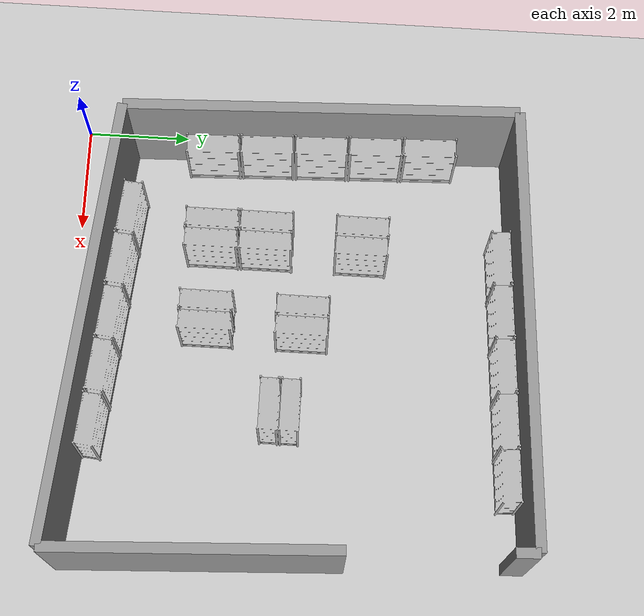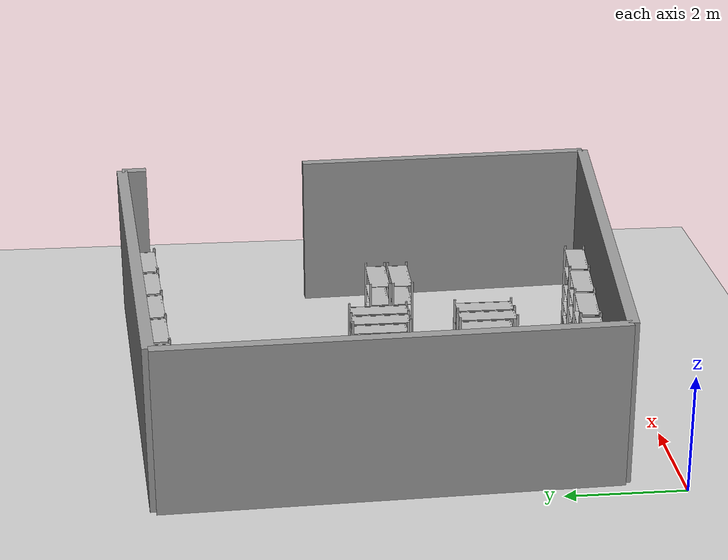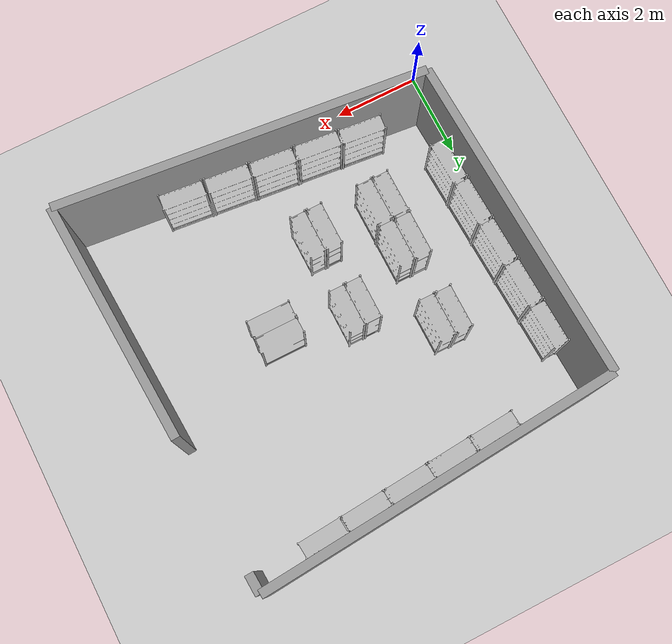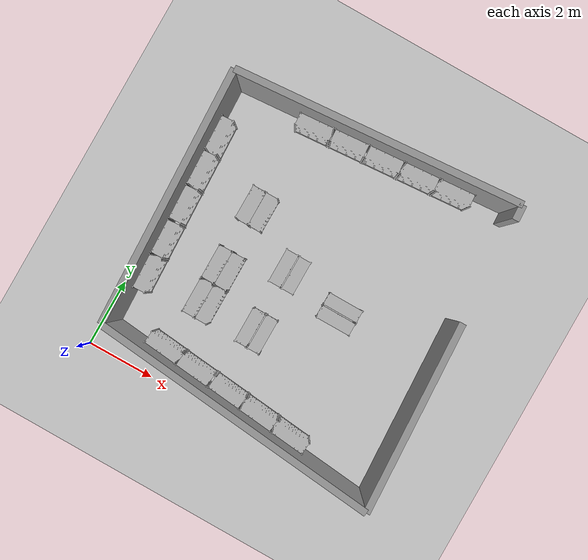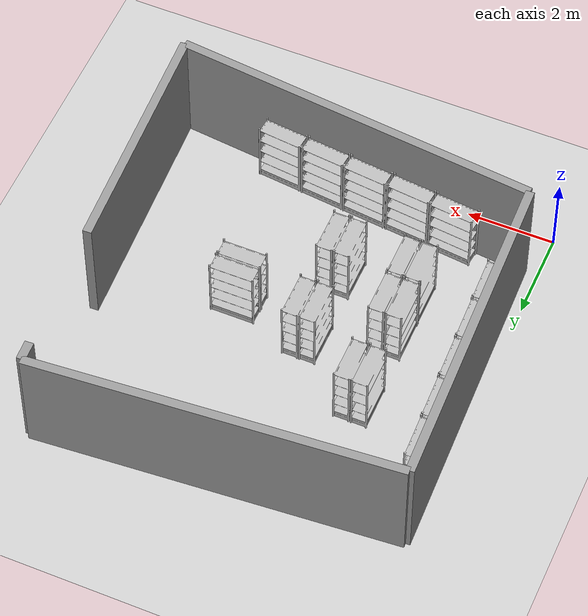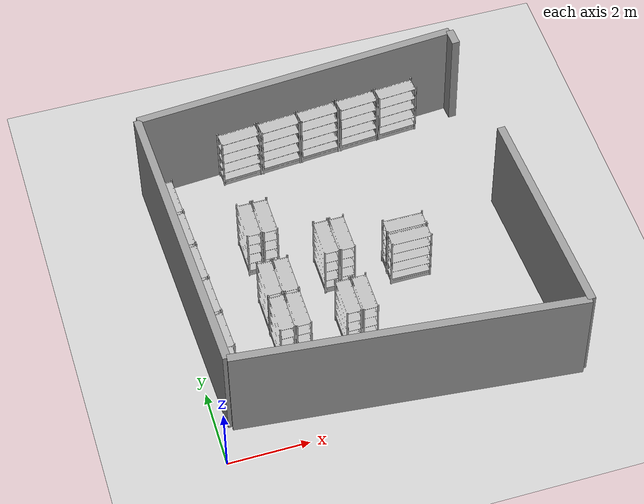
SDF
<sdf version="1.6">
  <world name="default">
    <light name="sun" type="directional">
      <cast_shadows>1</cast_shadows>
      <pose frame="">0 0 10 0 -0 0</pose>
      <diffuse>0.8 0.8 0.8 1</diffuse>
      <specular>0.2 0.2 0.2 1</specular>
      <attenuation>
        <range>1000</range>
        <constant>0.9</constant>
        <linear>0.01</linear>
        <quadratic>0.001</quadratic>
      </attenuation>
      <direction>-0.5 0.1 -0.9</direction>
    </light>
    <model name="ground_plane">
      <static>1</static>
      <link name="link">
        <collision name="collision">
          <geometry>
            <plane>
              <normal>0 0 1</normal>
              <size>100 100</size>
            </plane>
          </geometry>
          <surface>
            <contact>
              <collide_bitmask>65535</collide_bitmask>
              <ode />
            </contact>
            <friction>
              <ode>
                <mu>1000</mu>
                <mu2>1000</mu2>
              </ode>
              <torsional>
                <ode />
              </torsional>
            </friction>
            <bounce />
          </surface>
          <max_contacts>10</max_contacts>
        </collision>
        <visual name="visual">
          <cast_shadows>0</cast_shadows>
          <geometry>
            <plane>
              <normal>0 0 1</normal>
              <size>100 100</size>
            </plane>
          </geometry>
          <material>
            <script>
              <uri>file://media/materials/scripts/gazebo.material</uri>
              <name>Gazebo/Grey</name>
            </script>
          </material>
        </visual>
        <self_collide>0</self_collide>
        <enable_wind>0</enable_wind>
        <kinematic>0</kinematic>
      </link>
    </model>
    <gravity>0 0 -9.8</gravity>
    <magnetic_field>6e-06 2.3e-05 -4.2e-05</magnetic_field>
    <atmosphere type="adiabatic" />
    <physics name="default_physics" default="0" type="ode">
      <max_step_size>0.001</max_step_size>
      <real_time_factor>1</real_time_factor>
      <real_time_update_rate>1000</real_time_update_rate>
    </physics>
    <scene>
      <ambient>0.4 0.4 0.4 1</ambient>
      <background>0.7 0.7 0.7 1</background>
      <shadows>1</shadows>
    </scene>
    <audio>
      <device>default</device>
    </audio>
    <wind />
    <spherical_coordinates>
      <surface_model>EARTH_WGS84</surface_model>
      <latitude_deg>0</latitude_deg>
      <longitude_deg>0</longitude_deg>
      <elevation>0</elevation>
      <heading_deg>0</heading_deg>
    </spherical_coordinates>
    <gui fullscreen="0">
      <camera name="user_camera">
        <pose frame="">5.5458 -17.3868 19.7357 0 0.841797 1.67218</pose>
        <view_controller>orbit</view_controller>
        <projection_type>perspective</projection_type>
      </camera>
    </gui>
    <plugin name="ActorPosesPlugin" filename="libActorPosesPlugin.so" />
    <model name="store_shelf_moduled_0">
      <link name="link">
        <collision name="collision">
          <geometry>
            <mesh>
              <uri>model://store_shelf_moduled/meshes/store_shelf_moduled.dae</uri>
            </mesh>
          </geometry>
        </collision>
        <visual name="visual">
          <geometry>
            <mesh>
              <uri>model://store_shelf_moduled/meshes/store_shelf_moduled.dae</uri>
            </mesh>
          </geometry>
        </visual>
        <inertial>
          <mass>1000</mass>
          <inertia>
            <ixx>840083</ixx>
            <ixy>0</ixy>
            <ixz>0</ixz>
            <iyy>475500</iyy>
            <iyz>0</iyz>
            <izz>1.30208e+06</izz>
          </inertia>
        </inertial>
        <self_collide>0</self_collide>
        <enable_wind>0</enable_wind>
        <kinematic>0</kinematic>
      </link>
      <static>1</static>
      <pose frame="">1.430044 0.9394943 0 0 0 -0.1006093</pose>
    </model>
    <model name="store_shelf_moduled_1">
      <link name="link">
        <collision name="collision">
          <geometry>
            <mesh>
              <uri>model://store_shelf_moduled/meshes/store_shelf_moduled.dae</uri>
            </mesh>
          </geometry>
        </collision>
        <visual name="visual">
          <geometry>
            <mesh>
              <uri>model://store_shelf_moduled/meshes/store_shelf_moduled.dae</uri>
            </mesh>
          </geometry>
        </visual>
        <inertial>
          <mass>1000</mass>
          <inertia>
            <ixx>840083</ixx>
            <ixy>0</ixy>
            <ixz>0</ixz>
            <iyy>475500</iyy>
            <iyz>0</iyz>
            <izz>1.30208e+06</izz>
          </inertia>
        </inertial>
        <self_collide>0</self_collide>
        <enable_wind>0</enable_wind>
        <kinematic>0</kinematic>
      </link>
      <static>1</static>
      <pose frame="">2.480044 0.8294943 0 0 0 -0.1006093</pose>
    </model>
    <model name="store_shelf_moduled_2">
      <link name="link">
        <collision name="collision">
          <geometry>
            <mesh>
              <uri>model://store_shelf_moduled/meshes/store_shelf_moduled.dae</uri>
            </mesh>
          </geometry>
        </collision>
        <visual name="visual">
          <geometry>
            <mesh>
              <uri>model://store_shelf_moduled/meshes/store_shelf_moduled.dae</uri>
            </mesh>
          </geometry>
        </visual>
        <inertial>
          <mass>1000</mass>
          <inertia>
            <ixx>840083</ixx>
            <ixy>0</ixy>
            <ixz>0</ixz>
            <iyy>475500</iyy>
            <iyz>0</iyz>
            <izz>1.30208e+06</izz>
          </inertia>
        </inertial>
        <self_collide>0</self_collide>
        <enable_wind>0</enable_wind>
        <kinematic>0</kinematic>
      </link>
      <static>1</static>
      <pose frame="">3.540044 0.7294943 0 0 0 -0.1006093</pose>
    </model>
    <model name="store_shelf_moduled_3">
      <link name="link">
        <collision name="collision">
          <geometry>
            <mesh>
              <uri>model://store_shelf_moduled/meshes/store_shelf_moduled.dae</uri>
            </mesh>
          </geometry>
        </collision>
        <visual name="visual">
          <geometry>
            <mesh>
              <uri>model://store_shelf_moduled/meshes/store_shelf_moduled.dae</uri>
            </mesh>
          </geometry>
        </visual>
        <inertial>
          <mass>1000</mass>
          <inertia>
            <ixx>840083</ixx>
            <ixy>0</ixy>
            <ixz>0</ixz>
            <iyy>475500</iyy>
            <iyz>0</iyz>
            <izz>1.30208e+06</izz>
          </inertia>
        </inertial>
        <self_collide>0</self_collide>
        <enable_wind>0</enable_wind>
        <kinematic>0</kinematic>
      </link>
      <static>1</static>
      <pose frame="">4.590044 0.6194943 0 0 0 -0.1006093</pose>
    </model>
    <model name="store_shelf_moduled_4">
      <link name="link">
        <collision name="collision">
          <geometry>
            <mesh>
              <uri>model://store_shelf_moduled/meshes/store_shelf_moduled.dae</uri>
            </mesh>
          </geometry>
        </collision>
        <visual name="visual">
          <geometry>
            <mesh>
              <uri>model://store_shelf_moduled/meshes/store_shelf_moduled.dae</uri>
            </mesh>
          </geometry>
        </visual>
        <inertial>
          <mass>1000</mass>
          <inertia>
            <ixx>840083</ixx>
            <ixy>0</ixy>
            <ixz>0</ixz>
            <iyy>475500</iyy>
            <iyz>0</iyz>
            <izz>1.30208e+06</izz>
          </inertia>
        </inertial>
        <self_collide>0</self_collide>
        <enable_wind>0</enable_wind>
        <kinematic>0</kinematic>
      </link>
      <static>1</static>
      <pose frame="">5.650044 0.5094943 0 0 0 -0.1006093</pose>
    </model>
    <model name="store_shelf_moduled_5">
      <link name="link">
        <collision name="collision">
          <geometry>
            <mesh>
              <uri>model://store_shelf_moduled/meshes/store_shelf_moduled.dae</uri>
            </mesh>
          </geometry>
        </collision>
        <visual name="visual">
          <geometry>
            <mesh>
              <uri>model://store_shelf_moduled/meshes/store_shelf_moduled.dae</uri>
            </mesh>
          </geometry>
        </visual>
        <inertial>
          <mass>1000</mass>
          <inertia>
            <ixx>840083</ixx>
            <ixy>0</ixy>
            <ixz>0</ixz>
            <iyy>475500</iyy>
            <iyz>0</iyz>
            <izz>1.30208e+06</izz>
          </inertia>
        </inertial>
        <self_collide>0</self_collide>
        <enable_wind>0</enable_wind>
        <kinematic>0</kinematic>
      </link>
      <static>1</static>
      <pose frame="">7.317716 8.880298 0 0 0 -3.064358</pose>
    </model>
    <model name="store_shelf_moduled_6">
      <link name="link">
        <collision name="collision">
          <geometry>
            <mesh>
              <uri>model://store_shelf_moduled/meshes/store_shelf_moduled.dae</uri>
            </mesh>
          </geometry>
        </collision>
        <visual name="visual">
          <geometry>
            <mesh>
              <uri>model://store_shelf_moduled/meshes/store_shelf_moduled.dae</uri>
            </mesh>
          </geometry>
        </visual>
        <inertial>
          <mass>1000</mass>
          <inertia>
            <ixx>840083</ixx>
            <ixy>0</ixy>
            <ixz>0</ixz>
            <iyy>475500</iyy>
            <iyz>0</iyz>
            <izz>1.30208e+06</izz>
          </inertia>
        </inertial>
        <self_collide>0</self_collide>
        <enable_wind>0</enable_wind>
        <kinematic>0</kinematic>
      </link>
      <static>1</static>
      <pose frame="">6.257715 8.800298 0 0 0 -3.064358</pose>
    </model>
    <model name="store_shelf_moduled_7">
      <link name="link">
        <collision name="collision">
          <geometry>
            <mesh>
              <uri>model://store_shelf_moduled/meshes/store_shelf_moduled.dae</uri>
            </mesh>
          </geometry>
        </collision>
        <visual name="visual">
          <geometry>
            <mesh>
              <uri>model://store_shelf_moduled/meshes/store_shelf_moduled.dae</uri>
            </mesh>
          </geometry>
        </visual>
        <inertial>
          <mass>1000</mass>
          <inertia>
            <ixx>840083</ixx>
            <ixy>0</ixy>
            <ixz>0</ixz>
            <iyy>475500</iyy>
            <iyz>0</iyz>
            <izz>1.30208e+06</izz>
          </inertia>
        </inertial>
        <self_collide>0</self_collide>
        <enable_wind>0</enable_wind>
        <kinematic>0</kinematic>
      </link>
      <static>1</static>
      <pose frame="">5.197715 8.720298 0 0 0 -3.064358</pose>
    </model>
    <model name="store_shelf_moduled_8">
      <link name="link">
        <collision name="collision">
          <geometry>
            <mesh>
              <uri>model://store_shelf_moduled/meshes/store_shelf_moduled.dae</uri>
            </mesh>
          </geometry>
        </collision>
        <visual name="visual">
          <geometry>
            <mesh>
              <uri>model://store_shelf_moduled/meshes/store_shelf_moduled.dae</uri>
            </mesh>
          </geometry>
        </visual>
        <inertial>
          <mass>1000</mass>
          <inertia>
            <ixx>840083</ixx>
            <ixy>0</ixy>
            <ixz>0</ixz>
            <iyy>475500</iyy>
            <iyz>0</iyz>
            <izz>1.30208e+06</izz>
          </inertia>
        </inertial>
        <self_collide>0</self_collide>
        <enable_wind>0</enable_wind>
        <kinematic>0</kinematic>
      </link>
      <static>1</static>
      <pose frame="">4.147716 8.640298 0 0 0 -3.064358</pose>
    </model>
    <model name="store_shelf_moduled_9">
      <link name="link">
        <collision name="collision">
          <geometry>
            <mesh>
              <uri>model://store_shelf_moduled/meshes/store_shelf_moduled.dae</uri>
            </mesh>
          </geometry>
        </collision>
        <visual name="visual">
          <geometry>
            <mesh>
              <uri>model://store_shelf_moduled/meshes/store_shelf_moduled.dae</uri>
            </mesh>
          </geometry>
        </visual>
        <inertial>
          <mass>1000</mass>
          <inertia>
            <ixx>840083</ixx>
            <ixy>0</ixy>
            <ixz>0</ixz>
            <iyy>475500</iyy>
            <iyz>0</iyz>
            <izz>1.30208e+06</izz>
          </inertia>
        </inertial>
        <self_collide>0</self_collide>
        <enable_wind>0</enable_wind>
        <kinematic>0</kinematic>
      </link>
      <static>1</static>
      <pose frame="">3.087716 8.560298 0 0 0 -3.064358</pose>
    </model>
    <model name="store_shelf_moduled_10">
      <link name="link">
        <collision name="collision">
          <geometry>
            <mesh>
              <uri>model://store_shelf_moduled/meshes/store_shelf_moduled.dae</uri>
            </mesh>
          </geometry>
        </collision>
        <visual name="visual">
          <geometry>
            <mesh>
              <uri>model://store_shelf_moduled/meshes/store_shelf_moduled.dae</uri>
            </mesh>
          </geometry>
        </visual>
        <inertial>
          <mass>1000</mass>
          <inertia>
            <ixx>840083</ixx>
            <ixy>0</ixy>
            <ixz>0</ixz>
            <iyy>475500</iyy>
            <iyz>0</iyz>
            <izz>1.30208e+06</izz>
          </inertia>
        </inertial>
        <self_collide>0</self_collide>
        <enable_wind>0</enable_wind>
        <kinematic>0</kinematic>
      </link>
      <static>1</static>
      <pose frame="">0.2299349 7.373607 0 0 0 -1.534716</pose>
    </model>
    <model name="store_shelf_moduled_11">
      <link name="link">
        <collision name="collision">
          <geometry>
            <mesh>
              <uri>model://store_shelf_moduled/meshes/store_shelf_moduled.dae</uri>
            </mesh>
          </geometry>
        </collision>
        <visual name="visual">
          <geometry>
            <mesh>
              <uri>model://store_shelf_moduled/meshes/store_shelf_moduled.dae</uri>
            </mesh>
          </geometry>
        </visual>
        <inertial>
          <mass>1000</mass>
          <inertia>
            <ixx>840083</ixx>
            <ixy>0</ixy>
            <ixz>0</ixz>
            <iyy>475500</iyy>
            <iyz>0</iyz>
            <izz>1.30208e+06</izz>
          </inertia>
        </inertial>
        <self_collide>0</self_collide>
        <enable_wind>0</enable_wind>
        <kinematic>0</kinematic>
      </link>
      <static>1</static>
      <pose frame="">0.2699349 6.313607 0 0 0 -1.534716</pose>
    </model>
    <model name="store_shelf_moduled_12">
      <link name="link">
        <collision name="collision">
          <geometry>
            <mesh>
              <uri>model://store_shelf_moduled/meshes/store_shelf_moduled.dae</uri>
            </mesh>
          </geometry>
        </collision>
        <visual name="visual">
          <geometry>
            <mesh>
              <uri>model://store_shelf_moduled/meshes/store_shelf_moduled.dae</uri>
            </mesh>
          </geometry>
        </visual>
        <inertial>
          <mass>1000</mass>
          <inertia>
            <ixx>840083</ixx>
            <ixy>0</ixy>
            <ixz>0</ixz>
            <iyy>475500</iyy>
            <iyz>0</iyz>
            <izz>1.30208e+06</izz>
          </inertia>
        </inertial>
        <self_collide>0</self_collide>
        <enable_wind>0</enable_wind>
        <kinematic>0</kinematic>
      </link>
      <static>1</static>
      <pose frame="">0.3099349 5.253607 0 0 0 -1.534716</pose>
    </model>
    <model name="store_shelf_moduled_13">
      <link name="link">
        <collision name="collision">
          <geometry>
            <mesh>
              <uri>model://store_shelf_moduled/meshes/store_shelf_moduled.dae</uri>
            </mesh>
          </geometry>
        </collision>
        <visual name="visual">
          <geometry>
            <mesh>
              <uri>model://store_shelf_moduled/meshes/store_shelf_moduled.dae</uri>
            </mesh>
          </geometry>
        </visual>
        <inertial>
          <mass>1000</mass>
          <inertia>
            <ixx>840083</ixx>
            <ixy>0</ixy>
            <ixz>0</ixz>
            <iyy>475500</iyy>
            <iyz>0</iyz>
            <izz>1.30208e+06</izz>
          </inertia>
        </inertial>
        <self_collide>0</self_collide>
        <enable_wind>0</enable_wind>
        <kinematic>0</kinematic>
      </link>
      <static>1</static>
      <pose frame="">0.3499349 4.193607 0 0 0 -1.534716</pose>
    </model>
    <model name="store_shelf_moduled_14">
      <link name="link">
        <collision name="collision">
          <geometry>
            <mesh>
              <uri>model://store_shelf_moduled/meshes/store_shelf_moduled.dae</uri>
            </mesh>
          </geometry>
        </collision>
        <visual name="visual">
          <geometry>
            <mesh>
              <uri>model://store_shelf_moduled/meshes/store_shelf_moduled.dae</uri>
            </mesh>
          </geometry>
        </visual>
        <inertial>
          <mass>1000</mass>
          <inertia>
            <ixx>840083</ixx>
            <ixy>0</ixy>
            <ixz>0</ixz>
            <iyy>475500</iyy>
            <iyz>0</iyz>
            <izz>1.30208e+06</izz>
          </inertia>
        </inertial>
        <self_collide>0</self_collide>
        <enable_wind>0</enable_wind>
        <kinematic>0</kinematic>
      </link>
      <static>1</static>
      <pose frame="">0.3899349 3.133607 0 0 0 -1.534716</pose>
    </model>
    <model name="store_shelf_moduled_15">
      <link name="link">
        <collision name="collision">
          <geometry>
            <mesh>
              <uri>model://store_shelf_moduled/meshes/store_shelf_moduled.dae</uri>
            </mesh>
          </geometry>
        </collision>
        <visual name="visual">
          <geometry>
            <mesh>
              <uri>model://store_shelf_moduled/meshes/store_shelf_moduled.dae</uri>
            </mesh>
          </geometry>
        </visual>
        <inertial>
          <mass>1000</mass>
          <inertia>
            <ixx>840083</ixx>
            <ixy>0</ixy>
            <ixz>0</ixz>
            <iyy>475500</iyy>
            <iyz>0</iyz>
            <izz>1.30208e+06</izz>
          </inertia>
        </inertial>
        <self_collide>0</self_collide>
        <enable_wind>0</enable_wind>
        <kinematic>0</kinematic>
      </link>
      <static>1</static>
      <pose frame="">2.31 2.17 0 0 0 1.570796</pose>
    </model>
    <model name="store_shelf_moduled_16">
      <link name="link">
        <collision name="collision">
          <geometry>
            <mesh>
              <uri>model://store_shelf_moduled/meshes/store_shelf_moduled.dae</uri>
            </mesh>
          </geometry>
        </collision>
        <visual name="visual">
          <geometry>
            <mesh>
              <uri>model://store_shelf_moduled/meshes/store_shelf_moduled.dae</uri>
            </mesh>
          </geometry>
        </visual>
        <inertial>
          <mass>1000</mass>
          <inertia>
            <ixx>840083</ixx>
            <ixy>0</ixy>
            <ixz>0</ixz>
            <iyy>475500</iyy>
            <iyz>0</iyz>
            <izz>1.30208e+06</izz>
          </inertia>
        </inertial>
        <self_collide>0</self_collide>
        <enable_wind>0</enable_wind>
        <kinematic>0</kinematic>
      </link>
      <static>1</static>
      <pose frame="">2.31 3.23 0 0 0 -1.570796</pose>
    </model>
    <model name="store_shelf_moduled_17">
      <link name="link">
        <collision name="collision">
          <geometry>
            <mesh>
              <uri>model://store_shelf_moduled/meshes/store_shelf_moduled.dae</uri>
            </mesh>
          </geometry>
        </collision>
        <visual name="visual">
          <geometry>
            <mesh>
              <uri>model://store_shelf_moduled/meshes/store_shelf_moduled.dae</uri>
            </mesh>
          </geometry>
        </visual>
        <inertial>
          <mass>1000</mass>
          <inertia>
            <ixx>840083</ixx>
            <ixy>0</ixy>
            <ixz>0</ixz>
            <iyy>475500</iyy>
            <iyz>0</iyz>
            <izz>1.30208e+06</izz>
          </inertia>
        </inertial>
        <self_collide>0</self_collide>
        <enable_wind>0</enable_wind>
        <kinematic>0</kinematic>
      </link>
      <static>1</static>
      <pose frame="">2.31 3.23 0 0 0 1.570796</pose>
    </model>
    <model name="store_shelf_moduled_18">
      <link name="link">
        <collision name="collision">
          <geometry>
            <mesh>
              <uri>model://store_shelf_moduled/meshes/store_shelf_moduled.dae</uri>
            </mesh>
          </geometry>
        </collision>
        <visual name="visual">
          <geometry>
            <mesh>
              <uri>model://store_shelf_moduled/meshes/store_shelf_moduled.dae</uri>
            </mesh>
          </geometry>
        </visual>
        <inertial>
          <mass>1000</mass>
          <inertia>
            <ixx>840083</ixx>
            <ixy>0</ixy>
            <ixz>0</ixz>
            <iyy>475500</iyy>
            <iyz>0</iyz>
            <izz>1.30208e+06</izz>
          </inertia>
        </inertial>
        <self_collide>0</self_collide>
        <enable_wind>0</enable_wind>
        <kinematic>0</kinematic>
      </link>
      <static>1</static>
      <pose frame="">2.31 4.29 0 0 0 -1.570796</pose>
    </model>
    <model name="store_shelf_moduled_19">
      <link name="link">
        <collision name="collision">
          <geometry>
            <mesh>
              <uri>model://store_shelf_moduled/meshes/store_shelf_moduled.dae</uri>
            </mesh>
          </geometry>
        </collision>
        <visual name="visual">
          <geometry>
            <mesh>
              <uri>model://store_shelf_moduled/meshes/store_shelf_moduled.dae</uri>
            </mesh>
          </geometry>
        </visual>
        <inertial>
          <mass>1000</mass>
          <inertia>
            <ixx>840083</ixx>
            <ixy>0</ixy>
            <ixz>0</ixz>
            <iyy>475500</iyy>
            <iyz>0</iyz>
            <izz>1.30208e+06</izz>
          </inertia>
        </inertial>
        <self_collide>0</self_collide>
        <enable_wind>0</enable_wind>
        <kinematic>0</kinematic>
      </link>
      <static>1</static>
      <pose frame="">5.17 4.23 0 0 0 0</pose>
    </model>
    <model name="store_shelf_moduled_20">
      <link name="link">
        <collision name="collision">
          <geometry>
            <mesh>
              <uri>model://store_shelf_moduled/meshes/store_shelf_moduled.dae</uri>
            </mesh>
          </geometry>
        </collision>
        <visual name="visual">
          <geometry>
            <mesh>
              <uri>model://store_shelf_moduled/meshes/store_shelf_moduled.dae</uri>
            </mesh>
          </geometry>
        </visual>
        <inertial>
          <mass>1000</mass>
          <inertia>
            <ixx>840083</ixx>
            <ixy>0</ixy>
            <ixz>0</ixz>
            <iyy>475500</iyy>
            <iyz>0</iyz>
            <izz>1.30208e+06</izz>
          </inertia>
        </inertial>
        <self_collide>0</self_collide>
        <enable_wind>0</enable_wind>
        <kinematic>0</kinematic>
      </link>
      <static>1</static>
      <pose frame="">6.23 4.23 0 0 0 -3.141593</pose>
    </model>
    <model name="store_shelf_moduled_21">
      <link name="link">
        <collision name="collision">
          <geometry>
            <mesh>
              <uri>model://store_shelf_moduled/meshes/store_shelf_moduled.dae</uri>
            </mesh>
          </geometry>
        </collision>
        <visual name="visual">
          <geometry>
            <mesh>
              <uri>model://store_shelf_moduled/meshes/store_shelf_moduled.dae</uri>
            </mesh>
          </geometry>
        </visual>
        <inertial>
          <mass>1000</mass>
          <inertia>
            <ixx>840083</ixx>
            <ixy>0</ixy>
            <ixz>0</ixz>
            <iyy>475500</iyy>
            <iyz>0</iyz>
            <izz>1.30208e+06</izz>
          </inertia>
        </inertial>
        <self_collide>0</self_collide>
        <enable_wind>0</enable_wind>
        <kinematic>0</kinematic>
      </link>
      <static>1</static>
      <pose frame="">3.95 4.03 0 0 0 1.570796</pose>
    </model>
    <model name="store_shelf_moduled_22">
      <link name="link">
        <collision name="collision">
          <geometry>
            <mesh>
              <uri>model://store_shelf_moduled/meshes/store_shelf_moduled.dae</uri>
            </mesh>
          </geometry>
        </collision>
        <visual name="visual">
          <geometry>
            <mesh>
              <uri>model://store_shelf_moduled/meshes/store_shelf_moduled.dae</uri>
            </mesh>
          </geometry>
        </visual>
        <inertial>
          <mass>1000</mass>
          <inertia>
            <ixx>840083</ixx>
            <ixy>0</ixy>
            <ixz>0</ixz>
            <iyy>475500</iyy>
            <iyz>0</iyz>
            <izz>1.30208e+06</izz>
          </inertia>
        </inertial>
        <self_collide>0</self_collide>
        <enable_wind>0</enable_wind>
        <kinematic>0</kinematic>
      </link>
      <static>1</static>
      <pose frame="">3.95 5.09 0 0 0 -1.570796</pose>
    </model>
    <model name="store_shelf_moduled_23">
      <link name="link">
        <collision name="collision">
          <geometry>
            <mesh>
              <uri>model://store_shelf_moduled/meshes/store_shelf_moduled.dae</uri>
            </mesh>
          </geometry>
        </collision>
        <visual name="visual">
          <geometry>
            <mesh>
              <uri>model://store_shelf_moduled/meshes/store_shelf_moduled.dae</uri>
            </mesh>
          </geometry>
        </visual>
        <inertial>
          <mass>1000</mass>
          <inertia>
            <ixx>840083</ixx>
            <ixy>0</ixy>
            <ixz>0</ixz>
            <iyy>475500</iyy>
            <iyz>0</iyz>
            <izz>1.30208e+06</izz>
          </inertia>
        </inertial>
        <self_collide>0</self_collide>
        <enable_wind>0</enable_wind>
        <kinematic>0</kinematic>
      </link>
      <static>1</static>
      <pose frame="">3.95 2.17 0 0 0 1.570796</pose>
    </model>
    <model name="store_shelf_moduled_24">
      <link name="link">
        <collision name="collision">
          <geometry>
            <mesh>
              <uri>model://store_shelf_moduled/meshes/store_shelf_moduled.dae</uri>
            </mesh>
          </geometry>
        </collision>
        <visual name="visual">
          <geometry>
            <mesh>
              <uri>model://store_shelf_moduled/meshes/store_shelf_moduled.dae</uri>
            </mesh>
          </geometry>
        </visual>
        <inertial>
          <mass>1000</mass>
          <inertia>
            <ixx>840083</ixx>
            <ixy>0</ixy>
            <ixz>0</ixz>
            <iyy>475500</iyy>
            <iyz>0</iyz>
            <izz>1.30208e+06</izz>
          </inertia>
        </inertial>
        <self_collide>0</self_collide>
        <enable_wind>0</enable_wind>
        <kinematic>0</kinematic>
      </link>
      <static>1</static>
      <pose frame="">3.95 3.23 0 0 0 -1.570796</pose>
    </model>
    <model name="store_shelf_moduled_25">
      <link name="link">
        <collision name="collision">
          <geometry>
            <mesh>
              <uri>model://store_shelf_moduled/meshes/store_shelf_moduled.dae</uri>
            </mesh>
          </geometry>
        </collision>
        <visual name="visual">
          <geometry>
            <mesh>
              <uri>model://store_shelf_moduled/meshes/store_shelf_moduled.dae</uri>
            </mesh>
          </geometry>
        </visual>
        <inertial>
          <mass>1000</mass>
          <inertia>
            <ixx>840083</ixx>
            <ixy>0</ixy>
            <ixz>0</ixz>
            <iyy>475500</iyy>
            <iyz>0</iyz>
            <izz>1.30208e+06</izz>
          </inertia>
        </inertial>
        <self_collide>0</self_collide>
        <enable_wind>0</enable_wind>
        <kinematic>0</kinematic>
      </link>
      <static>1</static>
      <pose frame="">2.31 5.09 0 0 0 1.570796</pose>
    </model>
    <model name="store_shelf_moduled_26">
      <link name="link">
        <collision name="collision">
          <geometry>
            <mesh>
              <uri>model://store_shelf_moduled/meshes/store_shelf_moduled.dae</uri>
            </mesh>
          </geometry>
        </collision>
        <visual name="visual">
          <geometry>
            <mesh>
              <uri>model://store_shelf_moduled/meshes/store_shelf_moduled.dae</uri>
            </mesh>
          </geometry>
        </visual>
        <inertial>
          <mass>1000</mass>
          <inertia>
            <ixx>840083</ixx>
            <ixy>0</ixy>
            <ixz>0</ixz>
            <iyy>475500</iyy>
            <iyz>0</iyz>
            <izz>1.30208e+06</izz>
          </inertia>
        </inertial>
        <self_collide>0</self_collide>
        <enable_wind>0</enable_wind>
        <kinematic>0</kinematic>
      </link>
      <static>1</static>
      <pose frame="">2.31 6.15 0 0 0 -1.570796</pose>
    </model>
    <model name="grey_wall0">
      <static>1</static>
      <link name="link">
        <pose frame="">4.58 0.525 1.4 0 0 -0.1006093</pose>
        <visual name="visual">
          <cast_shadows>0</cast_shadows>
          <geometry>
            <box>
              <size>8.462795 0.2 2.8</size>
            </box>
          </geometry>
          <material>
            <name>vrc/grey_wall</name>
            <script>
              <uri>model://grey_wall/materials/scripts</uri>
              <uri>model://grey_wall/materials/textures</uri>
              <name>vrc/grey_wall</name>
            </script>
          </material>
        </visual>
        <collision name="collision">
          <geometry>
            <box>
              <size>8.462795 0.2 2.8</size>
            </box>
          </geometry>
          <max_contacts>5</max_contacts>
        </collision>
      </link>
    </model>
    <model name="grey_wall1">
      <static>1</static>
      <link name="link">
        <pose frame="">8.66 2.86 1.4 0 0 1.617863</pose>
        <visual name="visual">
          <cast_shadows>0</cast_shadows>
          <geometry>
            <box>
              <size>5.52612 0.2 2.8</size>
            </box>
          </geometry>
          <material>
            <name>vrc/grey_wall</name>
            <script>
              <uri>model://grey_wall/materials/scripts</uri>
              <uri>model://grey_wall/materials/textures</uri>
              <name>vrc/grey_wall</name>
            </script>
          </material>
        </visual>
        <collision name="collision">
          <geometry>
            <box>
              <size>5.52612 0.2 2.8</size>
            </box>
          </geometry>
          <max_contacts>5</max_contacts>
        </collision>
      </link>
    </model>
    <model name="grey_wall2">
      <static>1</static>
      <link name="link">
        <pose frame="">8.38 8.845 1.4 0 0 1.615211</pose>
        <visual name="visual">
          <cast_shadows>0</cast_shadows>
          <geometry>
            <box>
              <size>0.4504442 0.2 2.8</size>
            </box>
          </geometry>
          <material>
            <name>vrc/grey_wall</name>
            <script>
              <uri>model://grey_wall/materials/scripts</uri>
              <uri>model://grey_wall/materials/textures</uri>
              <name>vrc/grey_wall</name>
            </script>
          </material>
        </visual>
        <collision name="collision">
          <geometry>
            <box>
              <size>0.4504442 0.2 2.8</size>
            </box>
          </geometry>
          <max_contacts>5</max_contacts>
        </collision>
      </link>
    </model>
    <model name="grey_wall3">
      <static>1</static>
      <link name="link">
        <pose frame="">4.235 8.75 1.4 0 0 -3.064358</pose>
        <visual name="visual">
          <cast_shadows>0</cast_shadows>
          <geometry>
            <box>
              <size>8.294727 0.2 2.8</size>
            </box>
          </geometry>
          <material>
            <name>vrc/grey_wall</name>
            <script>
              <uri>model://grey_wall/materials/scripts</uri>
              <uri>model://grey_wall/materials/textures</uri>
              <name>vrc/grey_wall</name>
            </script>
          </material>
        </visual>
        <collision name="collision">
          <geometry>
            <box>
              <size>8.294727 0.2 2.8</size>
            </box>
          </geometry>
          <max_contacts>5</max_contacts>
        </collision>
      </link>
    </model>
    <model name="grey_wall4">
      <static>1</static>
      <link name="link">
        <pose frame="">0.235 4.69 1.4 0 0 -1.534716</pose>
        <visual name="visual">
          <cast_shadows>0</cast_shadows>
          <geometry>
            <box>
              <size>7.484871 0.2 2.8</size>
            </box>
          </geometry>
          <material>
            <name>vrc/grey_wall</name>
            <script>
              <uri>model://grey_wall/materials/scripts</uri>
              <uri>model://grey_wall/materials/textures</uri>
              <name>vrc/grey_wall</name>
            </script>
          </material>
        </visual>
        <collision name="collision">
          <geometry>
            <box>
              <size>7.484871 0.2 2.8</size>
            </box>
          </geometry>
          <max_contacts>5</max_contacts>
        </collision>
      </link>
    </model>
  </world>
</sdf>
